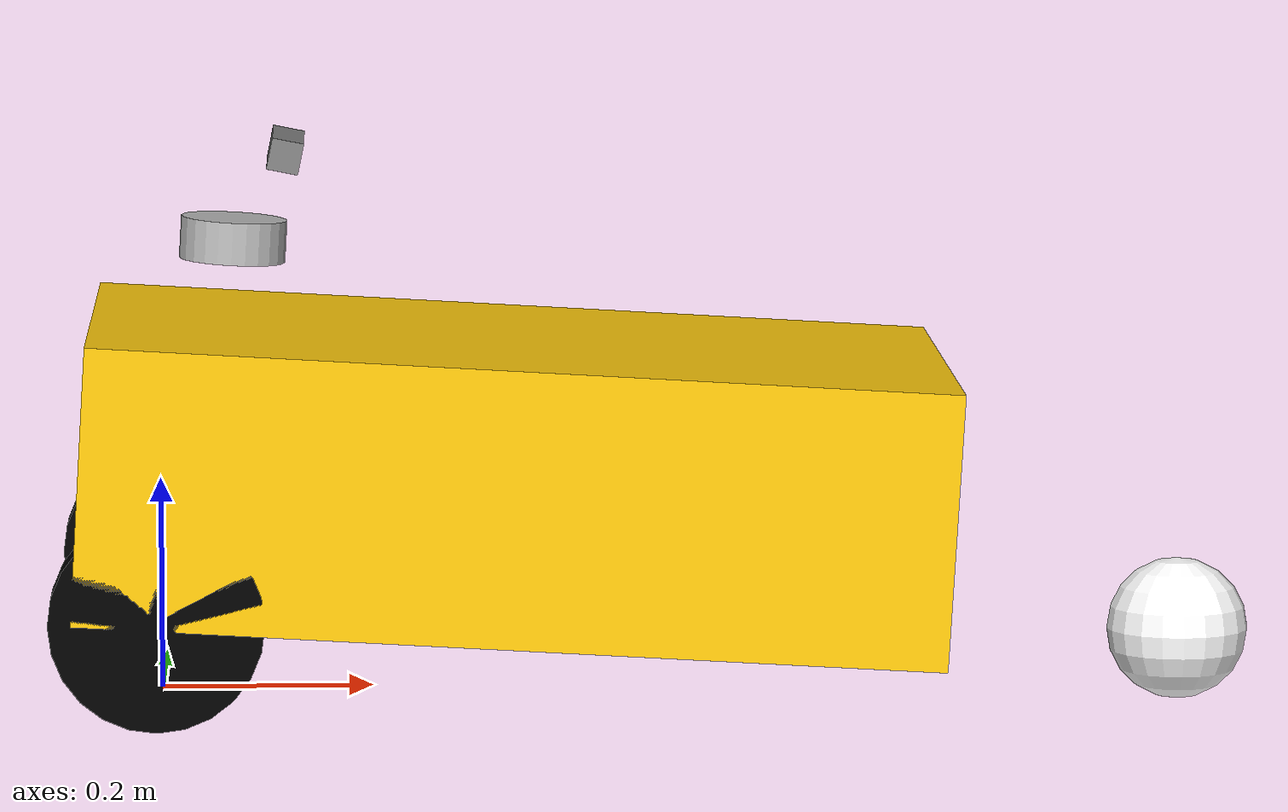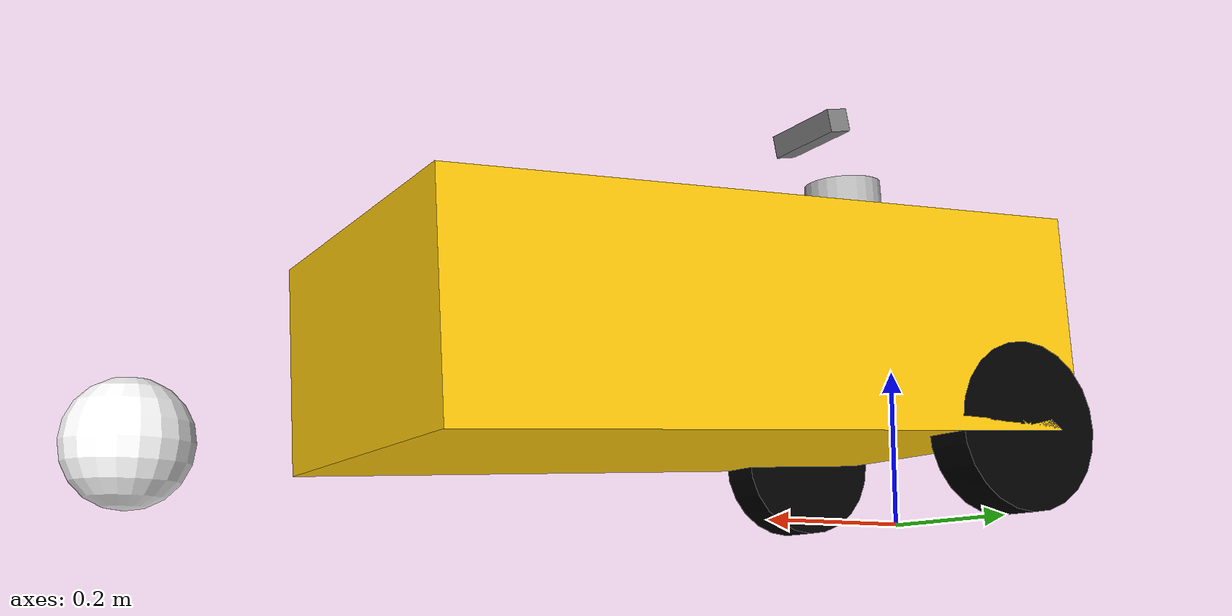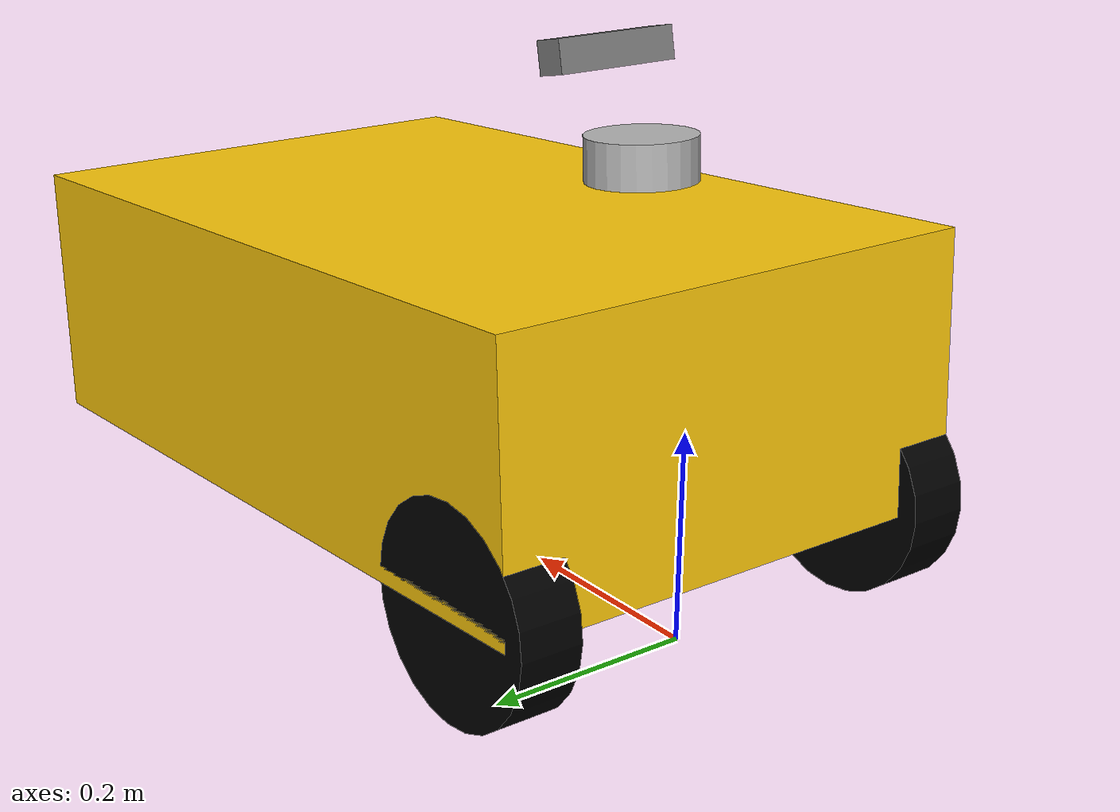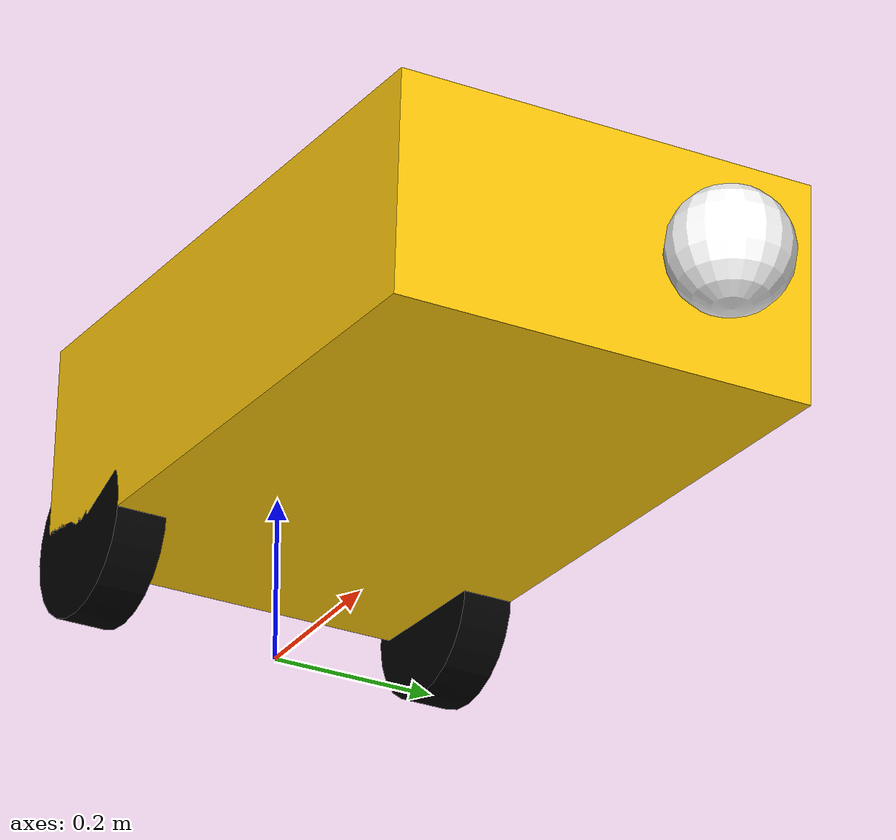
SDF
<?xml version="1.0" ?>
<sdf version="1.10">
    <model name='fejemis' canonical_link='base_link'>

        <link name="base_link">
        </link>

        <link name="base_footprint">
            <pose>0 0 0.1 0 0 0</pose>
            <inertial>
                <mass>5</mass>
                <inertia>
                    <ixx>0.273375</ixx>
                    <ixy>0</ixy>
                    <ixz>0</ixz>
                    <iyy>0.104167</iyy>
                    <iyz>0</iyz>
                    <izz>0.377542</izz>
                </inertia>
            </inertial>
        </link>

        <joint name="base_link_joint" type="fixed">
            <parent>base_link</parent>
            <child>base_footprint</child>
            <pose>0 0 0.1 0 0 0</pose>
        </joint>

        <link name="chassis">
            <pose>-0.1 0 0.1 0 0.06 0</pose>
            <inertial>
                <mass>5</mass>
                <inertia>
                    <ixx>0.273375</ixx>
                    <ixy>0</ixy>
                    <ixz>0</ixz>
                    <iyy>0.104167</iyy>
                    <iyz>0</iyz>
                    <izz>0.377542</izz>
                </inertia>
            </inertial>
            <visual name="chassis_visual">
                <pose>0.426 0 0.130 0 0 0</pose>
                <geometry>
                    <box>
                        <size>0.810 0.500 0.259</size>
                    </box>
                </geometry>
                <material>
                    <ambient>1.00 0.792 0.0400 1</ambient>
                    <diffuse>1.00 0.792 0.0400 1</diffuse>
                    <specular>1.00 0.792 0.0400 1</specular>
                </material>
            </visual>
            <sensor name='gpu_lidar' type='gpu_lidar'>"
                <pose relative_to='chassis'>0.15 0 0.329 0 0.06 0</pose>
                <topic>lidar</topic>
                <update_rate>10</update_rate>
                <ray>
                    <scan>
                        <horizontal>
                            <samples>640</samples>
                            <resolution>1</resolution>
                            <min_angle>-3.14</min_angle>
                            <max_angle>3.14</max_angle>
                        </horizontal>
                        <vertical>
                            <samples>1</samples>
                            <resolution>0.01</resolution>
                            <min_angle>0</min_angle>
                            <max_angle>0</max_angle>
                        </vertical>
                    </scan>
                    <range>
                        <min>0.1</min>
                        <max>15.0</max>
                        <resolution>0.015</resolution>
                    </range>
                </ray>
                <always_on>1</always_on>
                <visualize>true</visualize>
            </sensor>

            <sensor name="camera" type="camera">
                <pose relative_to='chassis'>0.12 0 0.513 0 0.2 0</pose>
                <visualize>true</visualize>
                <update_rate>10</update_rate>
                <camera>
                    <horizontal_fov>1.089</horizontal_fov>
                    <image>
                        <format>R8G8B8</format>
                        <width>640</width>
                        <height>480</height>
                    </image>
                </camera>
            </sensor>

        </link>

        <joint name="chassis_joint" type="fixed">
            <parent>base_footprint</parent>
            <child>chassis</child>
            <pose>-0.1 0 0 0 0 0</pose>
        </joint>

        <link name="left_wheel">
            <pose relative_to="base_footprint">0 0.220 0 -1.5708 0 0</pose>
            <inertial>
                <mass>0.5</mass>
                <inertia>
                    <ixx>0.0014</ixx>
                    <ixy>0</ixy>
                    <ixz>0</ixz>
                    <iyy>0.0014</iyy>
                    <iyz>0</iyz>
                    <izz>0.0025</izz>
                </inertia>
            </inertial>
            <visual name="left_wheel_visual">
                <geometry>
                    <cylinder>
                        <radius>0.1</radius>
                        <length>0.06</length>
                    </cylinder>
                </geometry>
                <material>
                    <ambient>0 0 0 1</ambient>
                    <diffuse>0 0 0 1</diffuse>
                    <specular>0 0 0 1</specular>
                </material>
            </visual>
            <collision name="left_wheel_collision">
                <geometry>
                    <cylinder>
                        <radius>0.1</radius>
                        <length>0.06</length>
                    </cylinder>
                </geometry>
            </collision>
        </link>

        <joint name='left_wheel_joint' type='revolute'>
            <pose relative_to='left_wheel'/>
            <parent>chassis</parent>
            <child>left_wheel</child>
            <axis>
                <xyz expressed_in='__model__'>0 1 0</xyz>
                <limit>
                    <lower>-100000000000</lower>
                    <upper>100000000000</upper>
                    <effort>100</effort>
                    <velocity>10.0</velocity>
                </limit>
            </axis>
        </joint>

        <link name="right_wheel">
            <pose relative_to="base_footprint">0 -0.220 0 -1.5708 0 0</pose>
            <inertial>
                <mass>0.5</mass>
                <inertia>
                    <ixx>0.0014</ixx>
                    <ixy>0</ixy>
                    <ixz>0</ixz>
                    <iyy>0.0014</iyy>
                    <iyz>0</iyz>
                    <izz>0.0025</izz>
                </inertia>
            </inertial>
            <visual name="right_wheel_visual">
                <geometry>
                    <cylinder>
                        <radius>0.1</radius>
                        <length>0.06</length>
                    </cylinder>
                </geometry>
                <material>
                    <ambient>0.0 0.0 0.0 1</ambient>
                    <diffuse>0.0 0.0 0.0 1</diffuse>
                    <specular>0.0 0.0 0.0 1</specular>
                </material>
            </visual>
            <collision name="right_wheel_collision">
                <geometry>
                    <cylinder>
                        <radius>0.1</radius>
                        <length>0.06</length>
                    </cylinder>
                </geometry>
            </collision>
        </link>

        <joint name='right_wheel_joint' type='revolute'>
            <pose relative_to='right_wheel'/>
            <parent>chassis</parent>
            <child>right_wheel</child>
            <axis>
                <xyz expressed_in='__model__'>0 1 0</xyz>
                <limit>
                    <lower>-100000000000</lower>
                    <upper>100000000000</upper>
                    <effort>100</effort>
                    <velocity>10.0</velocity>
                </limit>
            </axis>
        </joint>

        <link name="caster_wheel">
            <pose>0.970 0 0.05 0 0 0</pose>
            <inertial>
                <mass>1</mass>
                <inertia>
                    <ixx>0.000547</ixx>
                    <ixy>0</ixy>
                    <ixz>0</ixz>
                    <iyy>0.000547</iyy>
                    <iyz>0</iyz>
                    <izz>0.000547</izz>
                </inertia>
            </inertial>
            <visual name="caster_wheel_visual">
                <geometry>
                    <sphere>
                        <radius>0.0675</radius>
                    </sphere>
                </geometry>
                <material>
                    <ambient>1 1 1 1</ambient>
                    <diffuse>1 1 1 1</diffuse>
                    <specular>1 1 1 1</specular>
                </material>
            </visual>
            <collision name="caster_wheel_collision">
                <geometry>
                    <sphere>
                        <radius>0.0675</radius>
                    </sphere>
                </geometry>
            </collision>
        </link>

        <joint name="caster_wheel_joint" type="fixed">
            <parent>chassis</parent>
            <child>caster_wheel</child>
            <pose>0 0 0 0 0 0</pose>
        </joint>

        <!-- LiDAR sensor visual -->
        <link name="laser_link">
            <pose>0.07 0 0.429 0 0.06 0</pose>
            <visual name="laser_visual">
                <geometry>
                    <cylinder>
                        <radius>0.05</radius>
                        <length>0.04</length>
                    </cylinder>
                </geometry>
                <material/>
            </visual>
        </link>

        <joint name="laser_joint" type="fixed">
            <parent>chassis</parent>
            <child>laser_link</child>
            <pose>0.07 0 0.429 0 0 0</pose>
        </joint>

        <!-- Camera sensor visual-->
        <link name="camera_link">
            <pose>0.12 0 0.513 0 0.2 0</pose>
            <visual name="camera_visual">
                <geometry>
                    <box>
                        <size>0.03 0.124 0.03</size>
                    </box>
                </geometry>
                <material>
                    <ambient>0.5 0.5 0.5 1</ambient>
                    <diffuse>0.5 0.5 0.5 1</diffuse>
                    <specular>0.5 0.5 0.5 1</specular>
                </material>
            </visual>
        </link>

        <joint name="camera_joint" type="fixed">
            <parent>chassis</parent>
            <child>camera_link</child>
        </joint>

        <plugin
            filename="gz-sim-diff-drive-system"
            name="gz::sim::systems::DiffDrive">
            <left_joint>left_wheel_joint</left_joint>
            <right_joint>right_wheel_joint</right_joint>
            <wheel_separation>0.440</wheel_separation>
            <wheel_radius>0.1</wheel_radius>
            <odom_publish_frequency>10</odom_publish_frequency>
            <topic>/model/fejemis/cmd_vel</topic>
            <odom_topic>/model/fejemis/odometry</odom_topic>
            <tf_topic>/model/fejemis/tf</tf_topic>
            <frame_id>/odom</frame_id>
            <child_frame_id>/base_link</child_frame_id>

        </plugin>

    </model>
</sdf>
